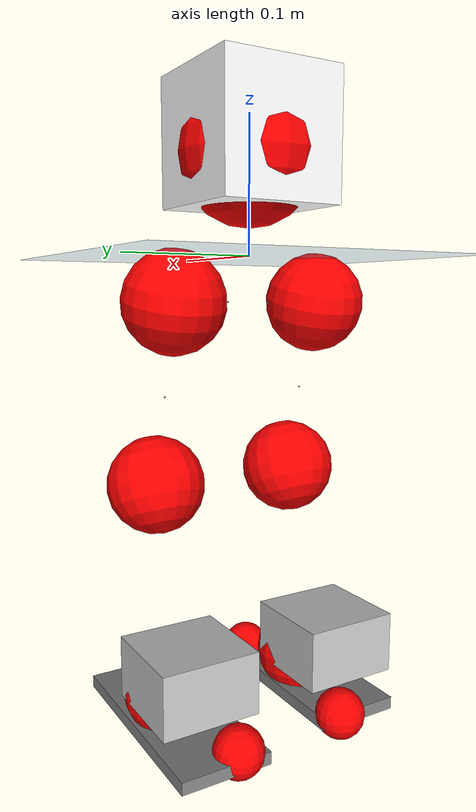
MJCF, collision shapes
<mujoco model="pi_12dof_release_v1">
  <compiler angle="radian" assetdir="assets" balanceinertia="true" inertiafromgeom="false"/>

  <option timestep="0.005" density="1.2" viscosity="2e-05"/>

  <size nkey="1"/>

  <visual>
    <quality shadowsize="8192"/>
    <map shadowclip="0.5"/>
  </visual>

  <default>
    <default class="/">
      <joint armature="0.01" damping="0.01" frictionloss="0.01"/>
      <geom contype="0" conaffinity="0" group="1" solref="-1000 -80"/>
      <site size="0.01 0.005 0.005" group="5"/>
      <general forcelimited="true" biastype="affine" gainprm="20" biasprm="0 -20 -0.5"/>
      <default class="foot">
        <geom size="0.0845 0.036 0.005" type="box" condim="6" group="4" priority="1" friction="0.9 0.2 0.2" solimp="0.015 1 0.005"/>
      </default>
      <default class="reward_collision_sphere">
        <geom group="5" rgba="1 0 0 1"/>
      </default>
    </default>
  </default>

  <asset>
    <texture type="skybox" colorspace="auto" name="//unnamed_texture_0" builtin="gradient" rgb1="0.95 0.95 0.95" rgb2="0.95 0.95 0.95" width="100" height="600"/>
    <texture type="2d" colorspace="auto" name="texplane" builtin="checker" rgb1="0.345 0.575 0.748" rgb2="0.345 0.575 0.748" markrgb="1 1 1" width="512" height="512"/>
    <material name="MatPlane" class="/" texture="texplane" texuniform="true" texrepeat="2 2" specular="0.9"/>
    <mesh name="baselink_1" class="/" file="baselink_1.STL"/>
    <mesh name="r_hip_pitch_link" class="/" file="r_hip_pitch_link.STL"/>
    <mesh name="r_hip_roll_link" class="/" file="r_hip_roll_link.STL"/>
    <mesh name="r_thigh_link" class="/" file="r_thigh_link.STL"/>
    <mesh name="r_calf_link" class="/" file="r_calf_link.STL"/>
    <mesh name="r_ankle_pitch_link" class="/" file="r_ankle_pitch_link.STL"/>
    <mesh name="r_ankle_roll_link" class="/" file="r_ankle_roll_link.STL"/>
    <mesh name="l_hip_pitch_link" class="/" file="l_hip_pitch_link.STL"/>
    <mesh name="l_hip_roll_link" class="/" file="l_hip_roll_link.STL"/>
    <mesh name="l_thigh_link" class="/" file="l_thigh_link.STL"/>
    <mesh name="l_calf_link" class="/" file="l_calf_link.STL"/>
    <mesh name="l_ankle_pitch_link" class="/" file="l_ankle_pitch_link.STL"/>
    <mesh name="l_ankle_roll_link" class="/" file="l_ankle_roll_link.STL"/>
  </asset>

  <worldbody>
    <geom name="floor" class="/" size="100 100 0.125" type="plane" group="0" material="MatPlane"/>
    <light name="toplight_shadow" class="/" pos="0 0 5" dir="0.0990148 0.0990148 -0.990148" type="directional" ambient="0.04 0.04 0.04" diffuse="0.55 0.55 0.55" specular="0.12 0.12 0.12"/>
    <light name="toplight_fill" class="/" pos="0 0 5" dir="0.0990148 0.0990148 -0.990148" type="directional" castshadow="false" ambient="0.04 0.04 0.04" diffuse="0.3 0.3 0.3" specular="0.08 0.08 0.08"/>
    <body name="trunk" pos="-0.000885046 0.000706231 0.000480224" quat="1 -4.94389e-05 3.2012e-05 7.16081e-05">
      <inertial pos="0.00116412 -0.000413767 0.0407053" quat="0.694686 0.00810246 0.0106459 0.719189" mass="1.7698" diaginertia="0.0105224 0.00267383 0.00433089"/>
      <joint name="//unnamed_joint_0" type="free"/>
      <geom name="//unnamed_geom_1" class="/" type="mesh" density="0" rgba="1 1 1 1" mesh="baselink_1"/>
      <geom name="//unnamed_geom_2" class="/" size="0.0467994 0.0467994 0.0467994" pos="0 0 0.0806123" type="box" rgba="1 1 1 1"/>
      <geom name="//unnamed_geom_3" class="reward_collision_sphere" size="0.0514793" pos="0 0 0.0705357"/>
      <site name="imu" class="/" pos="-0.000656548 -0.00163529 -0.00115247" size="0.00935988"/>
      <camera name="track" class="/" pos="0 -1.56967 0" quat="0.707107 0.707107 0 0" mode="trackcom"/>
      <camera name="ego_camera" class="/" pos="0.0761607 0 0.181378" quat="-0.5 -0.5 0.5 0.5"/>
      <body name="r_hip_pitch_link" pos="0.000539061 -0.0164894 -0.0340142" quat="0.992186 -3.53865e-05 -0.124767 0.000285548">
        <inertial pos="-0.000130131 -0.0432715 0.000932591" quat="-0.0204019 0.706454 -0.0279489 0.706913" mass="0.303082" diaginertia="0.000116849 2.90439e-05 8.55057e-05"/>
        <joint name="r_hip_pitch_joint" class="/" pos="0 0 0" axis="0.00625821 -0.999976 -0.00280275" range="-1.74788 1.24874" armature="0.00930846" damping="0.0148676" frictionloss="0.00905223"/>
        <geom name="//unnamed_geom_4" class="/" type="mesh" density="0" rgba="0.75294 0.75294 0.75294 1" mesh="r_hip_pitch_link"/>
        <geom name="//unnamed_geom_5" class="/" size="0.000467994 0.000467994 0.000467994" type="box" rgba="0.75294 0.75294 0.75294 1"/>
        <body name="r_hip_roll_link" pos="0.000564921 -0.0431344 -0.000214473" quat="1 6.03305e-08 -1.43586e-08 -1.40638e-07">
          <inertial pos="-4.45685e-05 -0.000184436 -0.0620091" quat="0.705226 -0.0783698 -0.0826679 0.699772" mass="0.317651" diaginertia="0.000361749 8.32116e-05 0.000134359"/>
          <joint name="r_hip_roll_joint" class="/" pos="0 0 0" axis="-1 -0.000449844 -0.000335425" range="-0.118232 0.47996" armature="0.00911899" damping="0.007082" frictionloss="0.00926032"/>
          <geom name="//unnamed_geom_6" class="/" type="mesh" density="0" rgba="0.75294 0.75294 0.75294 1" mesh="r_hip_roll_link"/>
          <geom name="//unnamed_geom_7" class="/" size="0.000467994 0.000467994 0.000467994" type="box" rgba="0.75294 0.75294 0.75294 1"/>
          <geom name="//unnamed_geom_8" class="reward_collision_sphere" size="0.0374395"/>
          <body name="r_thigh_link" pos="1.65907e-05 0.000829464 -0.0696264" quat="1 0.000399411 0.000209174 -0.000192744">
            <inertial pos="-0.000408187 0.000247185 -0.0474274" quat="0.738007 0.674793 0.000472744 0.000671948" mass="0.0926727" diaginertia="0.000135164 2.78864e-05 6.08211e-05"/>
            <joint name="r_thigh_joint" class="/" pos="0 0 0" axis="0.000730473 -0.00395869 -0.999992" range="-0.304054 0.575036" armature="0.00926008" damping="0.00211453" frictionloss="0.00950562"/>
            <geom name="//unnamed_geom_9" class="/" type="mesh" density="0" rgba="0.75294 0.75294 0.75294 1" mesh="r_thigh_link"/>
            <geom name="//unnamed_geom_10" class="/" size="0.000467994 0.000467994 0.000467994" type="box" rgba="0.75294 0.75294 0.75294 1"/>
            <body name="r_calf_link" pos="8.59634e-05 -0.000909168 -0.0703009" quat="0.947729 -1.62113e-05 0.319077 0.000236787">
              <inertial pos="-0.000769327 -0.000654468 -0.0704706" quat="0.999989 -0.00167286 0.000561988 0.0043433" mass="0.674358" diaginertia="0.00374756 0.00102638 0.000181675"/>
              <joint name="r_calf_joint" class="/" pos="0 0 0" axis="7.47751e-05 -0.999999 -0.00143783" range="-1.64519 0.644296" armature="0.0100317" damping="0" frictionloss="0.00994228"/>
              <geom name="//unnamed_geom_11" class="/" type="mesh" density="0" rgba="0.75294 0.75294 0.75294 1" mesh="r_calf_link"/>
              <geom name="//unnamed_geom_12" class="/" size="0.000467994 0.000467994 0.000467994" type="box" rgba="0.75294 0.75294 0.75294 1"/>
              <geom name="//unnamed_geom_13" class="reward_collision_sphere" size="0.0374395"/>
              <body name="r_ankle_pitch_link" pos="0.000602314 -0.000238455 -0.141052" quat="0.980103 -0.000170208 -0.198489 -0.0004086">
                <inertial pos="0.00550154 0.00156181 -0.000362772" quat="0.000665889 0.706686 -0.00248263 0.707522" mass="0.142525" diaginertia="0.000334353 6.68826e-05 0.000125314"/>
                <joint name="r_ankle_pitch_joint" class="/" pos="0 0 0" axis="0.00729729 -0.999972 0.00154003" range="-1.29367 0.494247" armature="0.00908562" damping="0.00883527" frictionloss="0.00971997"/>
                <geom name="//unnamed_geom_14" class="/" type="mesh" density="0" rgba="0.75294 0.75294 0.75294 1" mesh="r_ankle_pitch_link"/>
                <geom name="//unnamed_geom_15" class="/" size="0.0365035 0.0374395 0.0233997" type="box" rgba="0.75294 0.75294 0.75294 1"/>
                <body name="r_ankle_roll_link" pos="0.0768608 0.00193415 -0.000159322" quat="1 -4.58637e-05 -0.000119364 3.37425e-06">
                  <inertial pos="-0.0254808 0.000206595 -0.0149053" quat="0.559777 0.430223 0.433094 0.560346" mass="0.426171" diaginertia="0.00122158 0.000309082 0.000292771"/>
                  <joint name="r_ankle_roll_joint" class="/" pos="0 0 0" axis="-0.999959 -0.00713143 0.0055822" range="-0.149864 0.152453" armature="0.00961989" damping="0.00772286" frictionloss="0.00941751"/>
                  <geom name="//unnamed_geom_16" class="/" type="mesh" density="0" rgba="0.75294 0.75294 0.75294 1" mesh="r_ankle_roll_link"/>
                  <geom name="//unnamed_geom_17" class="/" type="mesh" rgba="0.75294 0.75294 0.75294 1" mesh="r_ankle_roll_link"/>
                  <geom name="right_foot" class="foot" size="0.0727379 0.0325773 0.00474683" pos="-0.0517892 0 -0.0443368"/>
                  <geom name="//unnamed_geom_19" class="reward_collision_sphere" size="0.0374395" pos="-0.0507738 0 -0.0201531"/>
                  <geom name="//unnamed_geom_20" class="reward_collision_sphere" size="0.0187198" pos="0.0152321 0.0156967 -0.0403061"/>
                  <geom name="//unnamed_geom_21" class="reward_collision_sphere" size="0.0187198" pos="-0.121857 0.0156967 -0.0403061"/>
                  <site name="right_foot" class="foot" pos="-0.0517892 0 -0.0443368" size="0.00935988"/>
                </body>
              </body>
            </body>
          </body>
        </body>
      </body>
      <body name="l_hip_pitch_link" pos="-0.000250022 0.0179988 -0.0334999" quat="0.99221 0.000756358 -0.124572 -0.000384838">
        <inertial pos="0.00174893 0.0419541 -0.00040777" quat="-0.03859 0.705521 0.0295212 0.707022" mass="0.320097" diaginertia="0.00013807 3.09506e-05 0.000103808"/>
        <joint name="l_hip_pitch_joint" class="/" pos="0 0 0" axis="0.000394676 1 3.26803e-05" stiffness="0.00195981" range="-1.26585 1.747" armature="0.00916624" damping="0.00481754" frictionloss="0.00906581"/>
        <geom name="//unnamed_geom_22" class="/" type="mesh" density="0" rgba="0.75294 0.75294 0.75294 1" mesh="l_hip_pitch_link"/>
        <geom name="//unnamed_geom_23" class="/" size="0.000467994 0.000467994 0.000467994" type="box" rgba="0.75294 0.75294 0.75294 1"/>
        <body name="l_hip_roll_link" pos="-4.81695e-05 0.0433026 -0.000295059" quat="1 0.000262287 -2.15609e-05 0.000169863">
          <inertial pos="-0.00128028 -0.000112238 -0.0621939" quat="0.698908 -0.0751454 -0.0790435 0.706847" mass="0.318845" diaginertia="0.000360743 8.30571e-05 0.000133346"/>
          <joint name="l_hip_roll_joint" class="/" pos="0 0 0" axis="-0.999991 -0.00290406 -0.00304758" range="-0.500677 0.127047" armature="0.00909029" damping="0" frictionloss="0.00895077"/>
          <geom name="//unnamed_geom_24" class="/" type="mesh" density="0" rgba="0.75294 0.75294 0.75294 1" mesh="l_hip_roll_link"/>
          <geom name="//unnamed_geom_25" class="/" size="0.000467994 0.000467994 0.000467994" type="box" rgba="0.75294 0.75294 0.75294 1"/>
          <geom name="//unnamed_geom_26" class="reward_collision_sphere" size="0.0374395"/>
          <body name="l_thigh_link" pos="0.000541042 -0.000534193 -0.070747" quat="1 -1.40514e-05 9.0131e-05 -1.7404e-05">
            <inertial pos="0.000513625 -0.00141487 -0.0490988" quat="0.675381 0.737469 -0.000179992 3.05317e-05" mass="0.0925025" diaginertia="0.000135254 2.81613e-05 6.05283e-05"/>
            <joint name="l_thigh_joint" class="/" pos="0 0 0" axis="-0.00181157 -0.00112036 -0.999998" range="-0.59909 0.287171" armature="0.00983913" damping="0.00403036" frictionloss="0.00920308"/>
            <geom name="//unnamed_geom_27" class="/" type="mesh" density="0" rgba="0.75294 0.75294 0.75294 1" mesh="l_thigh_link"/>
            <geom name="//unnamed_geom_28" class="/" size="0.000467994 0.000467994 0.000467994" type="box" rgba="0.75294 0.75294 0.75294 1"/>
            <body name="l_calf_link" pos="-0.000351342 0.000117933 -0.0711444" quat="0.947649 0.000125974 0.319313 0.000213767">
              <inertial pos="0.000345612 0.00179173 -0.0708066" quat="0.999979 0.0016152 0.000970637 0.00615806" mass="0.666091" diaginertia="0.00375474 0.0010298 0.000182398"/>
              <joint name="l_calf_joint" class="/" pos="0 0 0" axis="0.00214335 0.999998 -0.000281194" stiffness="0.00219106" range="-0.660514 1.65962" armature="0.00887408" damping="0.00747447" frictionloss="0.00981086"/>
              <geom name="//unnamed_geom_29" class="/" type="mesh" density="0" rgba="0.75294 0.75294 0.75294 1" mesh="l_calf_link"/>
              <geom name="//unnamed_geom_30" class="/" size="0.000467994 0.000467994 0.000467994" type="box" rgba="0.75294 0.75294 0.75294 1"/>
              <geom name="//unnamed_geom_31" class="reward_collision_sphere" size="0.0374395"/>
              <body name="l_ankle_pitch_link" pos="0.000370757 0.00119342 -0.140866" quat="0.980054 0.00019271 -0.198729 -0.000255656">
                <inertial pos="0.00486894 0.000157123 -0.000172017" quat="-0.00222421 0.707096 0.00217096 0.707111" mass="0.146462" diaginertia="0.000336304 6.6261e-05 0.000124323"/>
                <joint name="l_ankle_pitch_joint" class="/" pos="0 0 0" axis="0.00222291 0.999997 0.000496538" range="-0.514459 1.30411" armature="0.00938629" damping="0.00590878" frictionloss="0.00905538"/>
                <geom name="//unnamed_geom_32" class="/" type="mesh" density="0" rgba="0.75294 0.75294 0.75294 1" mesh="l_ankle_pitch_link"/>
                <geom name="//unnamed_geom_33" class="/" size="0.0365035 0.0374395 0.0233997" type="box" rgba="0.75294 0.75294 0.75294 1"/>
                <body name="l_ankle_roll_link" pos="0.0753642 0.000842393 0.00014752" quat="1 -0.00013253 -0.000141655 2.92719e-05">
                  <inertial pos="-0.0237509 6.55582e-05 -0.0155695" quat="0.55948 0.43129 0.435932 0.557615" mass="0.426279" diaginertia="0.00119212 0.000305471 0.000287565"/>
                  <joint name="l_ankle_roll_joint" class="/" pos="0 0 0" axis="-1 8.12513e-05 -0.000141228" range="-0.155801 0.152997" armature="0.009227" damping="0.00298214" frictionloss="0.00952204"/>
                  <geom name="//unnamed_geom_34" class="/" type="mesh" density="0" rgba="0.75294 0.75294 0.75294 1" mesh="l_ankle_roll_link"/>
                  <geom name="//unnamed_geom_35" class="/" type="mesh" rgba="0.75294 0.75294 0.75294 1" mesh="l_ankle_roll_link"/>
                  <geom name="left_foot" class="foot" size="0.0825142 0.0344242 0.00462449" pos="-0.0517892 0 -0.0443368"/>
                  <geom name="//unnamed_geom_37" class="reward_collision_sphere" size="0.0374395" pos="-0.0507738 0 -0.0201531"/>
                  <geom name="//unnamed_geom_38" class="reward_collision_sphere" size="0.0187198" pos="0.0152321 -0.0156967 -0.0403061"/>
                  <geom name="//unnamed_geom_39" class="reward_collision_sphere" size="0.0187198" pos="-0.121857 -0.0156967 -0.0403061"/>
                  <site name="left_foot" class="foot" pos="-0.0517892 0 -0.0443368" size="0.00935988"/>
                </body>
              </body>
            </body>
          </body>
        </body>
      </body>
    </body>
  </worldbody>

  <contact>
    <pair class="/" geom1="floor" geom2="right_foot" name="//unnamed_contact_1"/>
    <pair class="/" geom1="floor" geom2="left_foot" name="//unnamed_contact_0"/>
  </contact>

  <actuator>
    <general name="r_hip_pitch_joint" class="/" joint="r_hip_pitch_joint" forcerange="-19.3208 19.3208" gainprm="18.9835" biasprm="0 -18.9835 -0.480732"/>
    <general name="r_hip_roll_joint" class="/" joint="r_hip_roll_joint" forcerange="-19.6256 19.6256" gainprm="18.9835" biasprm="0 -18.9835 -0.480732"/>
    <general name="r_thigh_joint" class="/" joint="r_thigh_joint" forcerange="-19.7819 19.7819" gainprm="18.9835" biasprm="0 -18.9835 -0.480732"/>
    <general name="r_calf_joint" class="/" joint="r_calf_joint" forcerange="-19.2582 19.2582" gainprm="18.9835" biasprm="0 -18.9835 -0.480732"/>
    <general name="r_ankle_pitch_joint" class="/" joint="r_ankle_pitch_joint" forcerange="-20.0084 20.0084" gainprm="18.9835" biasprm="0 -18.9835 -0.480732"/>
    <general name="r_ankle_roll_joint" class="/" joint="r_ankle_roll_joint" forcerange="-19.2524 19.2524" gainprm="18.9835" biasprm="0 -18.9835 -0.480732"/>
    <general name="l_hip_pitch_joint" class="/" joint="l_hip_pitch_joint" forcerange="-19.8782 19.8782" gainprm="18.9835" biasprm="0 -18.9835 -0.480732"/>
    <general name="l_hip_roll_joint" class="/" joint="l_hip_roll_joint" forcerange="-20.3337 20.3337" gainprm="18.9835" biasprm="0 -18.9835 -0.480732"/>
    <general name="l_thigh_joint" class="/" joint="l_thigh_joint" forcerange="-19.7001 19.7001" gainprm="18.9835" biasprm="0 -18.9835 -0.480732"/>
    <general name="l_calf_joint" class="/" joint="l_calf_joint" forcerange="-20.5878 20.5878" gainprm="18.9835" biasprm="0 -18.9835 -0.480732"/>
    <general name="l_ankle_pitch_joint" class="/" joint="l_ankle_pitch_joint" forcerange="-19.5616 19.5616" gainprm="18.9835" biasprm="0 -18.9835 -0.480732"/>
    <general name="l_ankle_roll_joint" class="/" joint="l_ankle_roll_joint" forcerange="-20.014 20.014" gainprm="18.9835" biasprm="0 -18.9835 -0.480732"/>
  </actuator>

  <sensor>
    <gyro site="imu" name="imu_angular_velocity"/>
    <velocimeter site="imu" name="imu_linear_velocity"/>
    <framelinvel objtype="site" objname="left_foot" name="left_foot_global_linear_velocity"/>
    <framelinvel objtype="site" objname="right_foot" name="right_foot_global_linear_velocity"/>
  </sensor>

  <keyframe>
    <key name="home" qpos="0 0 0.291 1 0 0 0 0.4 0 0 -0.8 0.4 0 -0.4 0 0 0.8 -0.4 0"/>
  </keyframe>
</mujoco>
